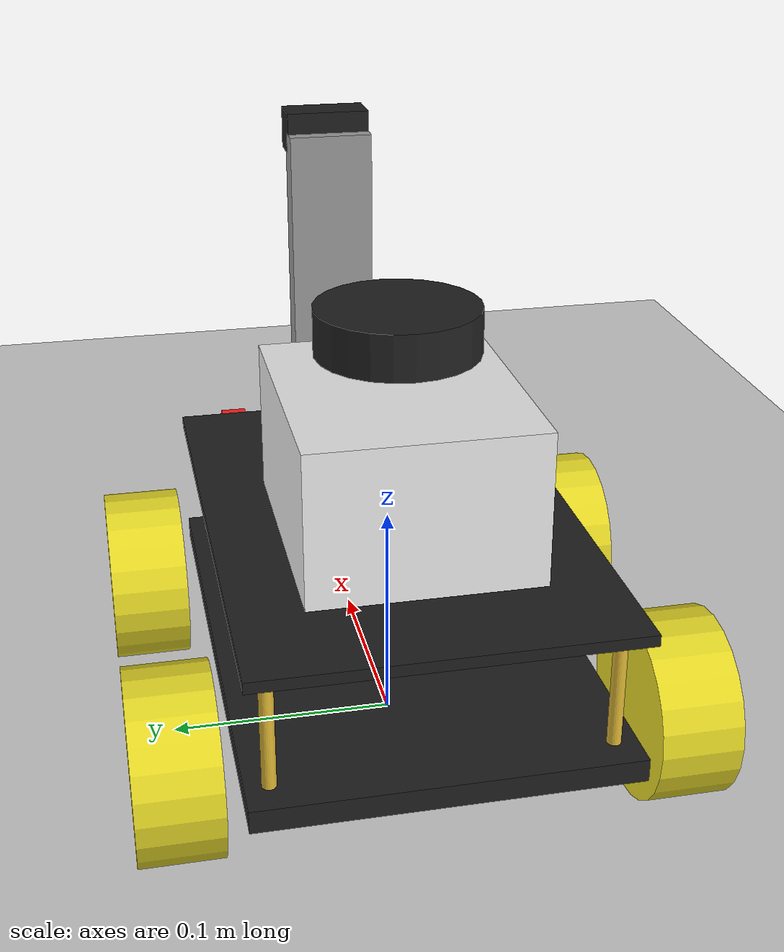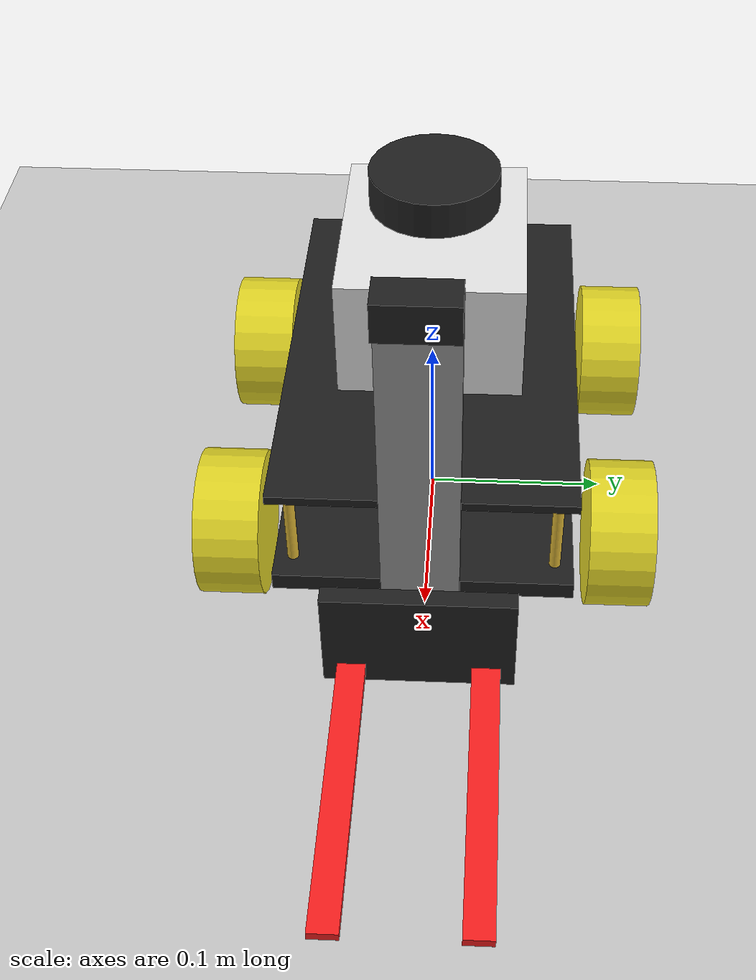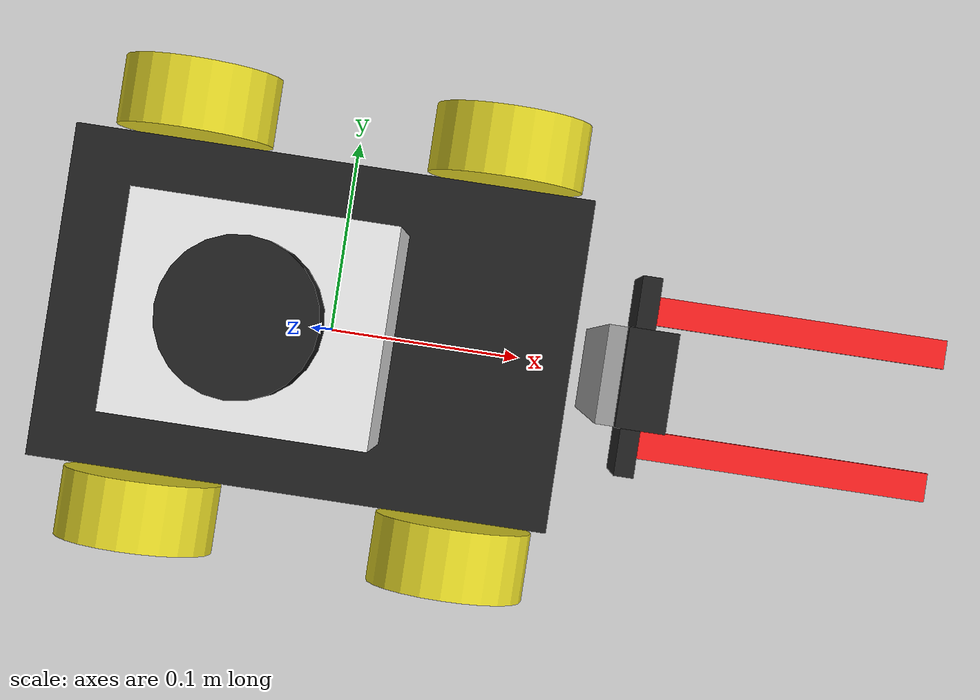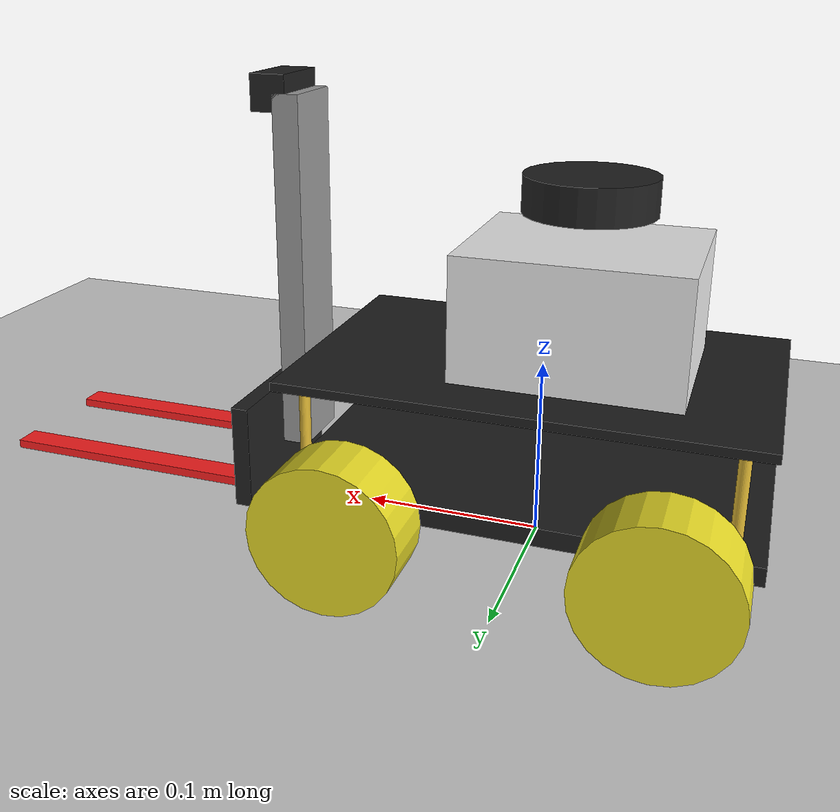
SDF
<sdf version="1.10">
 <world name="empty">
  <physics name="1ms" type="ignored">
   <max_step_size>0.001</max_step_size>
   <real_time_factor>1</real_time_factor>
   <real_time_update_rate>1000</real_time_update_rate>
  </physics>
  <plugin name="gz::sim::systems::Physics" filename="gz-sim-physics-system"/>
  <plugin name="gz::sim::systems::UserCommands" filename="gz-sim-user-commands-system"/>
  <plugin name="gz::sim::systems::SceneBroadcaster" filename="gz-sim-scene-broadcaster-system"/>
  <plugin name="gz::sim::systems::Contact" filename="gz-sim-contact-system"/>
  <gravity>0 0 -9.8000000000000007</gravity>
  <magnetic_field>5.5644999999999998e-06 2.2875799999999999e-05 -4.2388400000000002e-05</magnetic_field>
  <atmosphere type="adiabatic"/>
  <scene>
   <ambient>0.400000006 0.400000006 0.400000006 1</ambient>
   <background>0.699999988 0.699999988 0.699999988 1</background>
   <shadows>true</shadows>
  </scene>
  <model name="ground_plane">
   <static>true</static>
   <link name="link">
    <collision name="collision">
     <geometry><plane><normal>0 0 1</normal><size>100 100</size></plane></geometry>
    </collision>
    <visual name="visual">
     <geometry><plane><normal>0 0 1</normal><size>100 100</size></plane></geometry>
     <material>
      <ambient>0.800000012 0.800000012 0.800000012 1</ambient>
      <diffuse>0.800000012 0.800000012 0.800000012 1</diffuse>
      <specular>0.800000012 0.800000012 0.800000012 1</specular>
     </material>
    </visual>
    <inertial>
     <mass>1</mass>
     <inertia><ixx>1</ixx><ixy>0</ixy><ixz>0</ixz><iyy>1</iyy><iyz>0</iyz><izz>1</izz></inertia>
    </inertial>
   </link>
  </model>
  <model name="my_bot">
   <link name="base_link">
    <inertial>
     <pose>0.0027118644067796621 0 0.055084745762711863 0 0 0</pose>
     <mass>5.9000000000000004</mass>
     <inertia>
      <ixx>0.070932457627118653</ixx>
      <ixy>0</ixy>
      <ixz>-0.001298644067796611</ixz>
      <iyy>0.075049067796610178</iyy>
      <iyz>0</iyz>
      <izz>0.067116610169491525</izz>
     </inertia>
    </inertial>
    <collision name="base_link_fixed_joint_lump__chassis_collision">
     <pose>0 0 0.040000000000000001 0 0 0</pose>
     <geometry><box><size>0.25 0.16 0.050000000000000003</size></box></geometry>
    </collision>
    <collision name="base_link_fixed_joint_lump__mast_collision_1">
     <pose>0.14000000000000001 0 0.14000000000000001 0 0 0</pose>
     <geometry><box><size>0.014999999999999999 0.040000000000000001 0.20000000000000001</size></box></geometry>
    </collision>
    <collision name="base_link_fixed_joint_lump__top_deck_collision_2">
     <pose>0 0 0.10000000000000001 0 0 0</pose>
     <geometry><box><size>0.25 0.16 0.0050000000000000001</size></box></geometry>
    </collision>
    <collision name="base_link_fixed_joint_lump__white_box_collision_3">
     <pose>-0.02 0 0.13500000000000001 0 0 0</pose>
     <geometry><box><size>0.12 0.10000000000000001 0.070000000000000007</size></box></geometry>
    </collision>
    <collision name="base_link_fixed_joint_lump__laser_frame_collision_4">
     <pose>-0.02 0 0.19500000000000001 0 0 0</pose>
     <geometry><cylinder><length>0.02</length><radius>0.035000000000000003</radius></cylinder></geometry>
    </collision>
    <visual name="base_link_fixed_joint_lump__chassis_visual">
     <pose>0 0 0.040000000000000001 0 0 0</pose>
     <geometry><box><size>0.25 0.16 0.01</size></box></geometry>
     <material>
      <script><name>Gazebo/FlatBlack</name><uri>file://media/materials/scripts/gazebo.material</uri></script>
      <diffuse>0.125 0.125 0.125 1</diffuse>
      <ambient>0.125 0.125 0.125 1</ambient>
     </material>
    </visual>
    <visual name="base_link_fixed_joint_lump__mast_visual_1">
     <pose>0.14000000000000001 0 0.14000000000000001 0 0 0</pose>
     <geometry><box><size>0.014999999999999999 0.040000000000000001 0.20000000000000001</size></box></geometry>
     <material>
      <script><name>Gazebo/Grey</name><uri>file://media/materials/scripts/gazebo.material</uri></script>
      <diffuse>1 1 1 1</diffuse>
      <ambient>1 1 1 1</ambient>
     </material>
    </visual>
    <visual name="base_link_fixed_joint_lump__camera_link_visual_2">
     <pose>0.14999999999999999 0 0.23999999999999999 0 0 0</pose>
     <geometry><box><size>0.02 0.040000000000000001 0.02</size></box></geometry>
     <material><diffuse>0.125 0.125 0.125 1</diffuse><ambient>0.125 0.125 0.125 1</ambient></material>
    </visual>
    <visual name="base_link_fixed_joint_lump__pillar_-0.11_-0.07_visual_3">
     <pose>-0.11 -0.070000000000000007 0.070000000000000007 0 0 0</pose>
     <geometry>
      <cylinder><length>0.059999999999999998</length><radius>0.0030000000000000001</radius></cylinder>
     </geometry>
     <material>
      <script><name>Gazebo/Gold</name><uri>file://media/materials/scripts/gazebo.material</uri></script>
      <diffuse>1 0.75000006 0.25 1</diffuse>
      <ambient>1 0.75000006 0.25 1</ambient>
     </material>
    </visual>
    <visual name="base_link_fixed_joint_lump__pillar_-0.11_0.07_visual_4">
     <pose>-0.11 0.070000000000000007 0.070000000000000007 0 0 0</pose>
     <geometry>
      <cylinder><length>0.059999999999999998</length><radius>0.0030000000000000001</radius></cylinder>
     </geometry>
     <material>
      <script><name>Gazebo/Gold</name><uri>file://media/materials/scripts/gazebo.material</uri></script>
      <diffuse>1 0.75000006 0.25 1</diffuse>
      <ambient>1 0.75000006 0.25 1</ambient>
     </material>
    </visual>
    <visual name="base_link_fixed_joint_lump__pillar_0.11_-0.07_visual_5">
     <pose>0.11 -0.070000000000000007 0.070000000000000007 0 0 0</pose>
     <geometry>
      <cylinder><length>0.059999999999999998</length><radius>0.0030000000000000001</radius></cylinder>
     </geometry>
     <material>
      <script><name>Gazebo/Gold</name><uri>file://media/materials/scripts/gazebo.material</uri></script>
      <diffuse>1 0.75000006 0.25 1</diffuse>
      <ambient>1 0.75000006 0.25 1</ambient>
     </material>
    </visual>
    <visual name="base_link_fixed_joint_lump__pillar_0.11_0.07_visual_6">
     <pose>0.11 0.070000000000000007 0.070000000000000007 0 0 0</pose>
     <geometry>
      <cylinder><length>0.059999999999999998</length><radius>0.0030000000000000001</radius></cylinder>
     </geometry>
     <material>
      <script><name>Gazebo/Gold</name><uri>file://media/materials/scripts/gazebo.material</uri></script>
      <diffuse>1 0.75000006 0.25 1</diffuse>
      <ambient>1 0.75000006 0.25 1</ambient>
     </material>
    </visual>
    <visual name="base_link_fixed_joint_lump__top_deck_visual_7">
     <pose>0 0 0.10000000000000001 0 0 0</pose>
     <geometry><box><size>0.25 0.16 0.0050000000000000001</size></box></geometry>
     <material>
      <script><name>Gazebo/FlatBlack</name><uri>file://media/materials/scripts/gazebo.material</uri></script>
      <diffuse>0.125 0.125 0.125 1</diffuse>
      <ambient>0.125 0.125 0.125 1</ambient>
     </material>
    </visual>
    <visual name="base_link_fixed_joint_lump__white_box_visual_8">
     <pose>-0.02 0 0.13500000000000001 0 0 0</pose>
     <geometry><box><size>0.12 0.10000000000000001 0.070000000000000007</size></box></geometry>
     <material>
      <script><name>Gazebo/White</name><uri>file://media/materials/scripts/gazebo.material</uri></script>
      <diffuse>1 1 1 1</diffuse>
      <ambient>1 1 1 1</ambient>
     </material>
    </visual>
    <visual name="base_link_fixed_joint_lump__laser_frame_visual_9">
     <pose>-0.02 0 0.19500000000000001 0 0 0</pose>
     <geometry><cylinder><length>0.02</length><radius>0.035000000000000003</radius></cylinder></geometry>
     <material><diffuse>0.125 0.125 0.125 1</diffuse><ambient>0.125 0.125 0.125 1</ambient></material>
    </visual>
    <sensor name="lidar" type="gpu_lidar">
     <pose>-0.02 0 0.19500000000000001 0 0 0</pose>
     <topic>scan</topic>
     <update_rate>10</update_rate>
     <enable_metrics>false</enable_metrics>
     <lidar>
      <scan>
       <horizontal>
        <samples>500</samples>
        <resolution>1</resolution>
        <min_angle>-3.1415899999999999</min_angle>
        <max_angle>3.1415899999999999</max_angle>
       </horizontal>
       <vertical>
        <samples>1</samples>
        <min_angle>0</min_angle>
        <max_angle>0</max_angle>
        <resolution>1</resolution>
       </vertical>
      </scan>
      <range><min>0.12</min><max>10</max><resolution>0.014999999999999999</resolution></range>
      <noise><type>gaussian</type><mean>0</mean><stddev>0.01</stddev></noise>
      <visibility_mask>4294967295</visibility_mask>
     </lidar>
    </sensor>
   </link>
   <joint name="lift_joint" type="prismatic">
    <parent>base_link</parent>
    <child>lift_plate</child>
    <axis>
     <xyz>0 0 1</xyz>
     <limit>
      <lower>0</lower>
      <upper>0.12</upper>
      <effort>500</effort>
      <velocity>0.20000000000000001</velocity>
      <stiffness>100000000</stiffness>
      <dissipation>1</dissipation>
     </limit>
     <dynamics>
      <spring_reference>0</spring_reference>
      <spring_stiffness>0</spring_stiffness>
      <damping>0</damping>
      <friction>0</friction>
     </dynamics>
    </axis>
   </joint>
   <link name="lift_plate">
    <pose>0.16 1.0339757656912846e-25 0.039999999999989787 0 3.9220971412536972e-23 0</pose>
    <inertial>
     <mass>0.10000000000000001</mass>
     <inertia><ixx>0.001</ixx><ixy>0</ixy><ixz>0</ixz><iyy>0.001</iyy><iyz>0</iyz><izz>0.001</izz></inertia>
    </inertial>
    <collision name="lift_plate_collision">
     <geometry><box><size>0.01 0.10000000000000001 0.059999999999999998</size></box></geometry>
    </collision>
    <collision name="lift_plate_fixed_joint_lump__fork_left_collision_1">
     <pose>0.080000000000000002 0.035000000000000003 -0.02 0 0 0</pose>
     <geometry><box><size>0.16 0.014999999999999999 0.0050000000000000001</size></box></geometry>
    </collision>
    <collision name="lift_plate_fixed_joint_lump__fork_right_collision_2">
     <pose>0.080000000000000002 -0.035000000000000003 -0.02 0 0 0</pose>
     <geometry><box><size>0.16 0.014999999999999999 0.0050000000000000001</size></box></geometry>
    </collision>
    <visual name="lift_plate_visual">
     <geometry><box><size>0.01 0.10000000000000001 0.059999999999999998</size></box></geometry>
     <material><diffuse>0.125 0.125 0.125 1</diffuse><ambient>0.125 0.125 0.125 1</ambient></material>
    </visual>
    <visual name="lift_plate_fixed_joint_lump__fork_left_visual_1">
     <pose>0.080000000000000002 0.035000000000000003 -0.02 0 0 0</pose>
     <geometry><box><size>0.16 0.014999999999999999 0.0050000000000000001</size></box></geometry>
     <material><diffuse>1 0.125 0.125 1</diffuse><ambient>1 0.125 0.125 1</ambient></material>
    </visual>
    <visual name="lift_plate_fixed_joint_lump__fork_right_visual_2">
     <pose>0.080000000000000002 -0.035000000000000003 -0.02 0 0 0</pose>
     <geometry><box><size>0.16 0.014999999999999999 0.0050000000000000001</size></box></geometry>
     <material><diffuse>1 0.125 0.125 1</diffuse><ambient>1 0.125 0.125 1</ambient></material>
    </visual>
   </link>
   <joint name="front_left_wheel_joint" type="revolute">
    <pose>1.3877787807814457e-17 -1.3877787807814457e-17 0 0 0 0</pose>
    <parent>base_link</parent>
    <child>front_left_wheel</child>
    <axis>
     <xyz>0 0 1</xyz>
     <limit>
      <lower>-inf</lower>
      <upper>inf</upper>
      <effort>inf</effort>
      <velocity>inf</velocity>
      <stiffness>100000000</stiffness>
      <dissipation>1</dissipation>
     </limit>
     <dynamics>
      <spring_reference>0</spring_reference>
      <spring_stiffness>0</spring_stiffness>
      <damping>0</damping>
      <friction>0</friction>
     </dynamics>
    </axis>
   </joint>
   <link name="front_left_wheel">
    <pose>0.080000000000000002 0.105 0.039999999999999994 -1.5708000000000317 -0.00013074258406485932 4.8024432982954252e-10</pose>
    <inertial>
     <mass>0.40000000000000002</mass>
     <inertia><ixx>0.001</ixx><ixy>0</ixy><ixz>0</ixz><iyy>0.001</iyy><iyz>0</iyz><izz>0.001</izz></inertia>
    </inertial>
    <collision name="front_left_wheel_collision">
     <geometry>
      <cylinder><length>0.035000000000000003</length><radius>0.040000000000000001</radius></cylinder>
     </geometry>
     <surface><friction><ode><mu>0.01</mu><mu2>0.01</mu2></ode></friction></surface>
    </collision>
    <visual name="front_left_wheel_visual">
     <geometry>
      <cylinder><length>0.035000000000000003</length><radius>0.040000000000000001</radius></cylinder>
     </geometry>
     <material>
      <script><name>Gazebo/Yellow</name><uri>file://media/materials/scripts/gazebo.material</uri></script>
      <diffuse>1 0.9375 0 1</diffuse>
      <ambient>1 0.9375 0 1</ambient>
     </material>
    </visual>
   </link>
   <joint name="front_right_wheel_joint" type="revolute">
    <pose>1.3877787807814457e-17 1.3877787807814457e-17 0 0 0 0</pose>
    <parent>base_link</parent>
    <child>front_right_wheel</child>
    <axis>
     <xyz>0 0 1</xyz>
     <limit>
      <lower>-inf</lower>
      <upper>inf</upper>
      <effort>inf</effort>
      <velocity>inf</velocity>
      <stiffness>100000000</stiffness>
      <dissipation>1</dissipation>
     </limit>
     <dynamics>
      <spring_reference>0</spring_reference>
      <spring_stiffness>0</spring_stiffness>
      <damping>0</damping>
      <friction>0</friction>
     </dynamics>
    </axis>
   </joint>
   <link name="front_right_wheel">
    <pose>0.079999999999999988 -0.105 0.040000000000000001 -1.5708000000000319 -0.00013076258905268367 4.8031781224353087e-10</pose>
    <inertial>
     <mass>0.40000000000000002</mass>
     <inertia><ixx>0.001</ixx><ixy>0</ixy><ixz>0</ixz><iyy>0.001</iyy><iyz>0</iyz><izz>0.001</izz></inertia>
    </inertial>
    <collision name="front_right_wheel_collision">
     <geometry>
      <cylinder><length>0.035000000000000003</length><radius>0.040000000000000001</radius></cylinder>
     </geometry>
     <surface><friction><ode><mu>0.01</mu><mu2>0.01</mu2></ode></friction></surface>
    </collision>
    <visual name="front_right_wheel_visual">
     <geometry>
      <cylinder><length>0.035000000000000003</length><radius>0.040000000000000001</radius></cylinder>
     </geometry>
     <material>
      <script><name>Gazebo/Yellow</name><uri>file://media/materials/scripts/gazebo.material</uri></script>
      <diffuse>1 0.9375 0 1</diffuse>
      <ambient>1 0.9375 0 1</ambient>
     </material>
    </visual>
   </link>
   <joint name="rear_left_wheel_joint" type="revolute">
    <pose>-1.3877787807814457e-17 -1.3877787807814457e-17 0 0 0 0</pose>
    <parent>base_link</parent>
    <child>rear_left_wheel</child>
    <axis>
     <xyz>0 0 1</xyz>
     <limit>
      <lower>-inf</lower>
      <upper>inf</upper>
      <effort>inf</effort>
      <velocity>inf</velocity>
      <stiffness>100000000</stiffness>
      <dissipation>1</dissipation>
     </limit>
     <dynamics>
      <spring_reference>0</spring_reference>
      <spring_stiffness>0</spring_stiffness>
      <damping>0</damping>
      <friction>0</friction>
     </dynamics>
    </axis>
   </joint>
   <link name="rear_left_wheel">
    <pose>-0.079999994607566127 0.1049999999994793 0.040000478619379984 -1.5707999999869524 1.3480760236941315e-07 3.0814559665766226e-16</pose>
    <inertial>
     <mass>0.40000000000000002</mass>
     <inertia><ixx>0.001</ixx><ixy>0</ixy><ixz>0</ixz><iyy>0.001</iyy><iyz>0</iyz><izz>0.001</izz></inertia>
    </inertial>
    <collision name="rear_left_wheel_collision">
     <geometry>
      <cylinder><length>0.035000000000000003</length><radius>0.040000000000000001</radius></cylinder>
     </geometry>
    </collision>
    <visual name="rear_left_wheel_visual">
     <geometry>
      <cylinder><length>0.035000000000000003</length><radius>0.040000000000000001</radius></cylinder>
     </geometry>
     <material>
      <script><name>Gazebo/Yellow</name><uri>file://media/materials/scripts/gazebo.material</uri></script>
      <diffuse>1 0.9375 0 1</diffuse>
      <ambient>1 0.9375 0 1</ambient>
     </material>
    </visual>
   </link>
   <joint name="rear_right_wheel_joint" type="revolute">
    <pose>-1.3877787807814457e-17 1.3877787807814457e-17 0 0 0 0</pose>
    <parent>base_link</parent>
    <child>rear_right_wheel</child>
    <axis>
     <xyz>0 0 1</xyz>
     <limit>
      <lower>-inf</lower>
      <upper>inf</upper>
      <effort>inf</effort>
      <velocity>inf</velocity>
      <stiffness>100000000</stiffness>
      <dissipation>1</dissipation>
     </limit>
     <dynamics>
      <spring_reference>0</spring_reference>
      <spring_stiffness>0</spring_stiffness>
      <damping>0</damping>
      <friction>0</friction>
     </dynamics>
    </axis>
   </joint>
   <link name="rear_right_wheel">
    <pose>-0.079999994607566058 -0.10500000000052069 0.040000478616639863 -1.5707999999869524 1.3480761307304251e-07 3.0810627580006393e-16</pose>
    <inertial>
     <mass>0.40000000000000002</mass>
     <inertia><ixx>0.001</ixx><ixy>0</ixy><ixz>0</ixz><iyy>0.001</iyy><iyz>0</iyz><izz>0.001</izz></inertia>
    </inertial>
    <collision name="rear_right_wheel_collision">
     <geometry>
      <cylinder><length>0.035000000000000003</length><radius>0.040000000000000001</radius></cylinder>
     </geometry>
    </collision>
    <visual name="rear_right_wheel_visual">
     <geometry>
      <cylinder><length>0.035000000000000003</length><radius>0.040000000000000001</radius></cylinder>
     </geometry>
     <material>
      <script><name>Gazebo/Yellow</name><uri>file://media/materials/scripts/gazebo.material</uri></script>
      <diffuse>1 0.9375 0 1</diffuse>
      <ambient>1 0.9375 0 1</ambient>
     </material>
    </visual>
   </link>
   <plugin name="gz::sim::systems::Sensors" filename="gz-sim-sensors-system">
    <render_engine>ogre2</render_engine>
   </plugin>
   <plugin name="gz::sim::systems::DiffDrive" filename="gz-sim-diff-drive-system">
    <left_joint>rear_left_wheel_joint</left_joint>
    <right_joint>rear_right_wheel_joint</right_joint>
    <wheel_separation>0.21</wheel_separation>
    <wheel_radius>0.04</wheel_radius>
    <odom_publish_frequency>50</odom_publish_frequency>
    <topic>cmd_vel</topic>
    <odom_topic>odom</odom_topic>
    <frame_id>odom</frame_id>
    <child_frame_id>base_link</child_frame_id>
    <publish_odom_tf>true</publish_odom_tf>
    <publish_wheel_tf>true</publish_wheel_tf>
   </plugin>
   <plugin name="gz::sim::systems::JointStatePublisher" filename="gz-sim-joint-state-publisher-system"/>
   <frame name="camera_joint" attached_to="mast"><pose>0.01 0 0.10000000000000001 0 0 0</pose></frame>
   <frame name="camera_link" attached_to="camera_joint"/>
   <frame name="mast_joint" attached_to="chassis">
    <pose>0.14000000000000001 0 0.10000000000000001 0 0 0</pose>
   </frame>
   <frame name="mast" attached_to="mast_joint"/>
   <frame name="fork_left_joint" attached_to="lift_plate">
    <pose>0.080000000000000002 0.035000000000000003 -0.02 0 0 0</pose>
   </frame>
   <frame name="fork_left" attached_to="fork_left_joint"/>
   <frame name="fork_right_joint" attached_to="lift_plate">
    <pose>0.080000000000000002 -0.035000000000000003 -0.02 0 0 0</pose>
   </frame>
   <frame name="fork_right" attached_to="fork_right_joint"/>
   <frame name="standoff_-0.11_-0.07" attached_to="chassis">
    <pose>-0.11 -0.070000000000000007 0.029999999999999999 0 0 0</pose>
   </frame>
   <frame name="pillar_-0.11_-0.07" attached_to="standoff_-0.11_-0.07"/>
   <frame name="standoff_-0.11_0.07" attached_to="chassis">
    <pose>-0.11 0.070000000000000007 0.029999999999999999 0 0 0</pose>
   </frame>
   <frame name="pillar_-0.11_0.07" attached_to="standoff_-0.11_0.07"/>
   <frame name="standoff_0.11_-0.07" attached_to="chassis">
    <pose>0.11 -0.070000000000000007 0.029999999999999999 0 0 0</pose>
   </frame>
   <frame name="pillar_0.11_-0.07" attached_to="standoff_0.11_-0.07"/>
   <frame name="standoff_0.11_0.07" attached_to="chassis">
    <pose>0.11 0.070000000000000007 0.029999999999999999 0 0 0</pose>
   </frame>
   <frame name="pillar_0.11_0.07" attached_to="standoff_0.11_0.07"/>
   <frame name="laser_joint" attached_to="white_box"><pose>0 0 0.059999999999999998 0 0 0</pose></frame>
   <frame name="laser_frame" attached_to="laser_joint"/>
   <frame name="box_joint" attached_to="top_deck"><pose>-0.02 0 0.035000000000000003 0 0 0</pose></frame>
   <frame name="white_box" attached_to="box_joint"/>
   <frame name="top_deck_joint" attached_to="chassis"><pose>0 0 0.059999999999999998 0 0 0</pose></frame>
   <frame name="top_deck" attached_to="top_deck_joint"/>
   <frame name="chassis_joint" attached_to="base_link"><pose>0 0 0.040000000000000001 0 0 0</pose></frame>
   <frame name="chassis" attached_to="chassis_joint"/>
   <pose>-3.980357281481232e-06 1.1085737320309858e-10 -7.8854234354022016e-07 2.7218858980090912e-09 -2.4098060455172116e-07 -1.3513477003833587e-09</pose>
   <static>false</static>
  </model>
  <light name="sun" type="directional">
   <pose>0 0 10 0 0 0</pose>
   <intensity>1</intensity>
   <direction>-0.5 0.10000000000000001 -0.90000000000000002</direction>
   <diffuse>0.800000012 0.800000012 0.800000012 1</diffuse>
   <specular>0.200000003 0.200000003 0.200000003 1</specular>
   <attenuation>
    <range>1000</range>
    <linear>0.01</linear>
    <constant>0.90000000000000002</constant>
    <quadratic>0.001</quadratic>
   </attenuation>
   <spot><inner_angle>0</inner_angle><outer_angle>0</outer_angle><falloff>0</falloff></spot>
  </light>
 </world>
</sdf>
